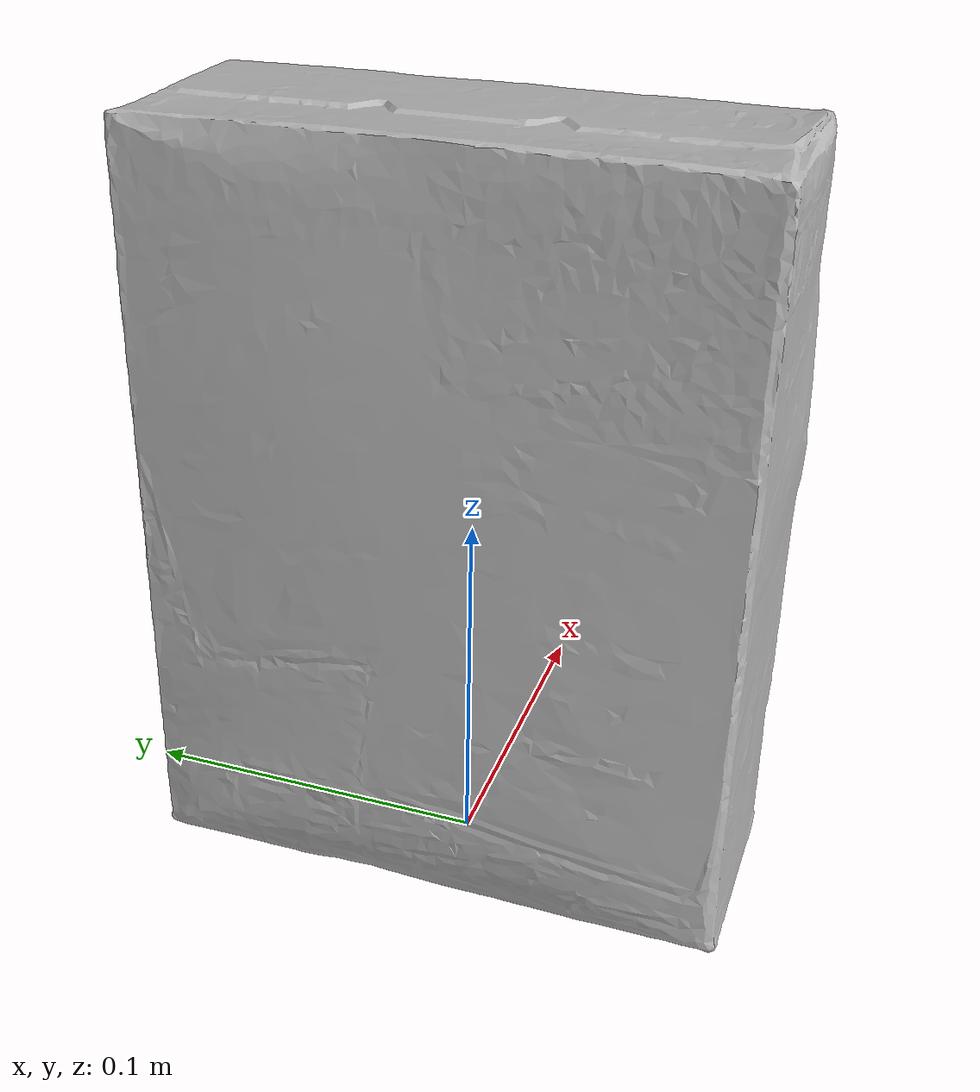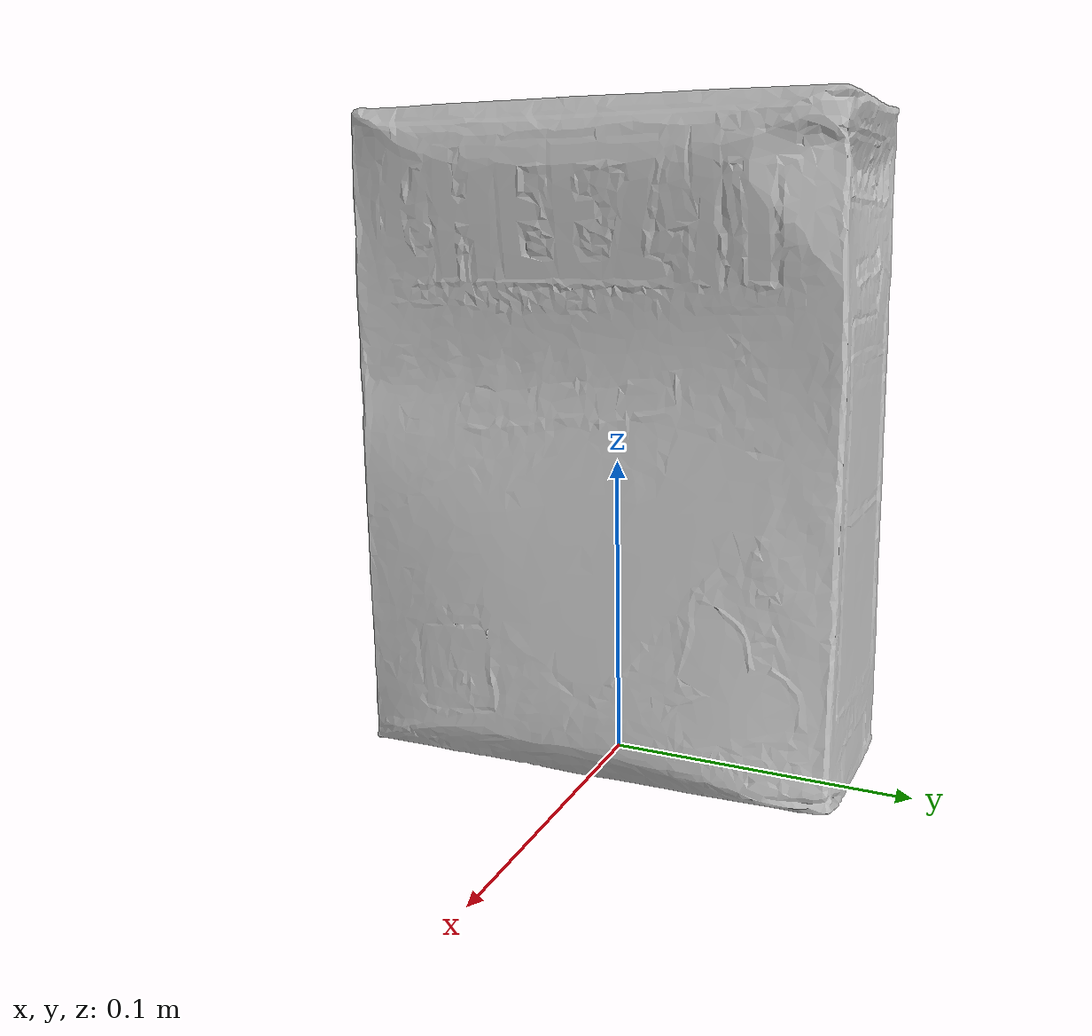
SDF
<?xml version="1.0" ?>
<sdf version="1.8">
  <model name='ycb_001_cheez-it'>
    <link name='body'>
      <inertial>
        <mass>2.93393821406</mass>
        <pose>-0.0017945578 0.000649945533 0.105349868 0 0 0</pose>
        <inertia>
          <ixx>0.017100285088</ixx>
          <ixy>-3.56548142137e-06</ixy>
          <ixz>0.000109124466445</ixz>
          <iyy>0.0120082426729</iyy>
          <iyz>3.89306936817e-05</iyz>
          <izz>0.00713499707215</izz>
        </inertia>
      </inertial>

      <visual name='ycb_001_cheez-it_visual'>
        <pose>0.013059 0.014855 0.003145 0 0 0</pose>
        <geometry>
          <mesh>
            <uri>model://ycb_001_cheez-it/meshes/textured.dae</uri>
          </mesh>
        </geometry>
      </visual>

      <collision name='ycb_001_cheez-it_collision'>
        <pose>0.013059 0.014855 0.003145 0 0 0</pose>
        <geometry>
          <mesh>
            <uri>model://ycb_001_cheez-it/meshes/nontextured.stl</uri>
          </mesh>
        </geometry>
        <max_contacts>10</max_contacts>
      </collision>
    </link>
  </model>
</sdf>
